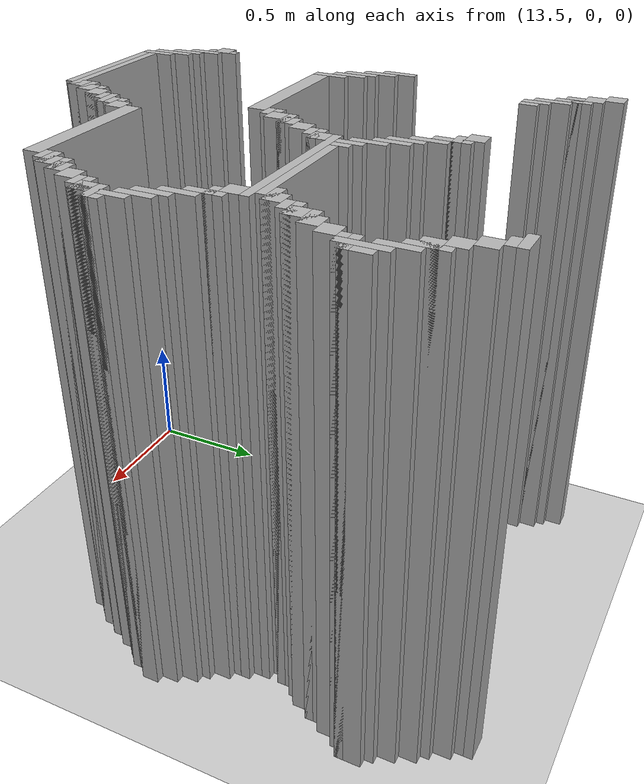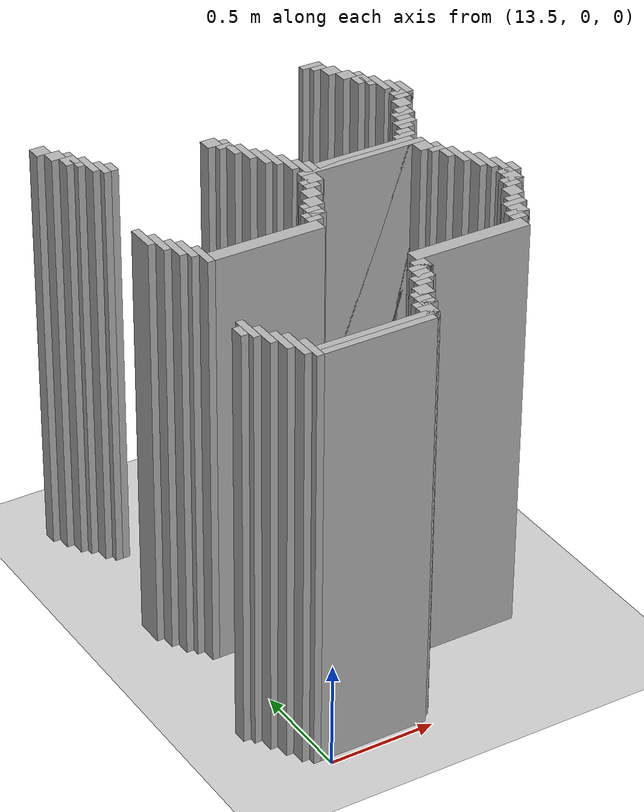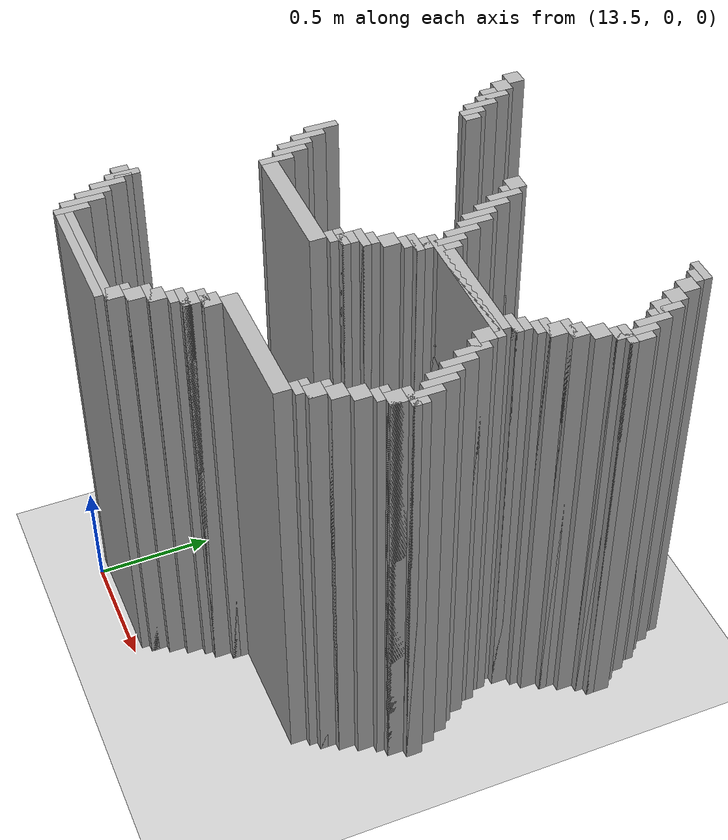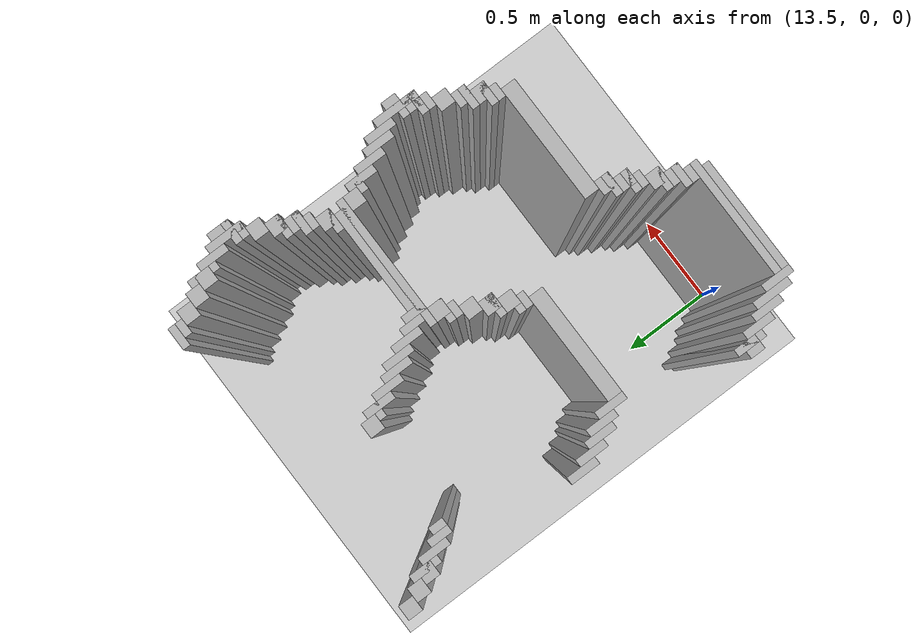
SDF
<sdf version="1.6">
 <world name="slam_world">
  <model name="ground_plane">
   <static>true</static>
   <link name="link">
    <collision name="collision">
     <geometry><plane><normal>0 0 1</normal><size>100 100</size></plane></geometry>
    </collision>
    <visual name="visual">
     <geometry><plane><normal>0 0 1</normal><size>100 100</size></plane></geometry>
     <material>
      <ambient>0.8 0.8 0.8 1</ambient>
      <diffuse>0.8 0.8 0.8 1</diffuse>
      <specular>0.8 0.8 0.8 1</specular>
     </material>
    </visual>
   </link>
  </model>
  <model name="wall_5030">
   <static>true</static>
   <pose>14.704176334106728 2.140371229698376 1.0 0 0 0</pose>
   <link name="link">
    <collision name="collision">
     <geometry><box><size>0.10440835266821345 0.03480278422273782 2.0</size></box></geometry>
    </collision>
    <visual name="visual">
     <geometry><box><size>0.10440835266821345 0.03480278422273782 2.0</size></box></geometry>
     <material><ambient>0.5 0.5 0.5 1</ambient><diffuse>0.7 0.7 0.7 1</diffuse></material>
    </visual>
   </link>
  </model>
  <model name="wall_5043">
   <static>true</static>
   <pose>14.721577726218097 2.105568445475638 1.0 0 0 0</pose>
   <link name="link">
    <collision name="collision">
     <geometry><box><size>0.06960556844547564 0.03480278422273782 2.0</size></box></geometry>
    </collision>
    <visual name="visual">
     <geometry><box><size>0.06960556844547564 0.03480278422273782 2.0</size></box></geometry>
     <material><ambient>0.5 0.5 0.5 1</ambient><diffuse>0.7 0.7 0.7 1</diffuse></material>
    </visual>
   </link>
  </model>
  <model name="wall_5055">
   <static>true</static>
   <pose>13.294663573085847 2.053364269141531 1.0 0 0 0</pose>
   <link name="link">
    <collision name="collision">
     <geometry><box><size>0.06960556844547564 0.06960556844547564 2.0</size></box></geometry>
    </collision>
    <visual name="visual">
     <geometry><box><size>0.06960556844547564 0.06960556844547564 2.0</size></box></geometry>
     <material><ambient>0.5 0.5 0.5 1</ambient><diffuse>0.7 0.7 0.7 1</diffuse></material>
    </visual>
   </link>
  </model>
  <model name="wall_5056">
   <static>true</static>
   <pose>14.756380510440835 2.053364269141531 1.0 0 0 0</pose>
   <link name="link">
    <collision name="collision">
     <geometry><box><size>0.06960556844547564 0.06960556844547564 2.0</size></box></geometry>
    </collision>
    <visual name="visual">
     <geometry><box><size>0.06960556844547564 0.06960556844547564 2.0</size></box></geometry>
     <material><ambient>0.5 0.5 0.5 1</ambient><diffuse>0.7 0.7 0.7 1</diffuse></material>
    </visual>
   </link>
  </model>
  <model name="wall_5068">
   <static>true</static>
   <pose>13.329466357308585 1.9837587006960555 1.0 0 0 0</pose>
   <link name="link">
    <collision name="collision">
     <geometry><box><size>0.06960556844547564 0.06960556844547564 2.0</size></box></geometry>
    </collision>
    <visual name="visual">
     <geometry><box><size>0.06960556844547564 0.06960556844547564 2.0</size></box></geometry>
     <material><ambient>0.5 0.5 0.5 1</ambient><diffuse>0.7 0.7 0.7 1</diffuse></material>
    </visual>
   </link>
  </model>
  <model name="wall_5069">
   <static>true</static>
   <pose>14.791183294663572 1.9837587006960555 1.0 0 0 0</pose>
   <link name="link">
    <collision name="collision">
     <geometry><box><size>0.06960556844547564 0.06960556844547564 2.0</size></box></geometry>
    </collision>
    <visual name="visual">
     <geometry><box><size>0.06960556844547564 0.06960556844547564 2.0</size></box></geometry>
     <material><ambient>0.5 0.5 0.5 1</ambient><diffuse>0.7 0.7 0.7 1</diffuse></material>
    </visual>
   </link>
  </model>
  <model name="wall_5081">
   <static>true</static>
   <pose>13.38167053364269 1.91415313225058 1.0 0 0 0</pose>
   <link name="link">
    <collision name="collision">
     <geometry><box><size>0.03480278422273782 0.13921113689095127 2.0</size></box></geometry>
    </collision>
    <visual name="visual">
     <geometry><box><size>0.03480278422273782 0.13921113689095127 2.0</size></box></geometry>
     <material><ambient>0.5 0.5 0.5 1</ambient><diffuse>0.7 0.7 0.7 1</diffuse></material>
    </visual>
   </link>
  </model>
  <model name="wall_5082">
   <static>true</static>
   <pose>14.84338747099768 1.91415313225058 1.0 0 0 0</pose>
   <link name="link">
    <collision name="collision">
     <geometry><box><size>0.03480278422273782 0.13921113689095127 2.0</size></box></geometry>
    </collision>
    <visual name="visual">
     <geometry><box><size>0.03480278422273782 0.13921113689095127 2.0</size></box></geometry>
     <material><ambient>0.5 0.5 0.5 1</ambient><diffuse>0.7 0.7 0.7 1</diffuse></material>
    </visual>
   </link>
  </model>
  <model name="wall_5091">
   <static>true</static>
   <pose>13.364269141531322 1.91415313225058 1.0 0 0 0</pose>
   <link name="link">
    <collision name="collision">
     <geometry><box><size>0.06960556844547564 0.06960556844547564 2.0</size></box></geometry>
    </collision>
    <visual name="visual">
     <geometry><box><size>0.06960556844547564 0.06960556844547564 2.0</size></box></geometry>
     <material><ambient>0.5 0.5 0.5 1</ambient><diffuse>0.7 0.7 0.7 1</diffuse></material>
    </visual>
   </link>
  </model>
  <model name="wall_5092">
   <static>true</static>
   <pose>14.825986078886311 1.91415313225058 1.0 0 0 0</pose>
   <link name="link">
    <collision name="collision">
     <geometry><box><size>0.06960556844547564 0.06960556844547564 2.0</size></box></geometry>
    </collision>
    <visual name="visual">
     <geometry><box><size>0.06960556844547564 0.06960556844547564 2.0</size></box></geometry>
     <material><ambient>0.5 0.5 0.5 1</ambient><diffuse>0.7 0.7 0.7 1</diffuse></material>
    </visual>
   </link>
  </model>
  <model name="wall_5104">
   <static>true</static>
   <pose>13.416473317865428 1.8445475638051043 1.0 0 0 0</pose>
   <link name="link">
    <collision name="collision">
     <geometry><box><size>0.03480278422273782 0.13921113689095127 2.0</size></box></geometry>
    </collision>
    <visual name="visual">
     <geometry><box><size>0.03480278422273782 0.13921113689095127 2.0</size></box></geometry>
     <material><ambient>0.5 0.5 0.5 1</ambient><diffuse>0.7 0.7 0.7 1</diffuse></material>
    </visual>
   </link>
  </model>
  <model name="wall_5105">
   <static>true</static>
   <pose>14.878190255220417 1.8445475638051043 1.0 0 0 0</pose>
   <link name="link">
    <collision name="collision">
     <geometry><box><size>0.03480278422273782 0.13921113689095127 2.0</size></box></geometry>
    </collision>
    <visual name="visual">
     <geometry><box><size>0.03480278422273782 0.13921113689095127 2.0</size></box></geometry>
     <material><ambient>0.5 0.5 0.5 1</ambient><diffuse>0.7 0.7 0.7 1</diffuse></material>
    </visual>
   </link>
  </model>
  <model name="wall_5123">
   <static>true</static>
   <pose>13.451276102088167 1.7923433874709975 1.0 0 0 0</pose>
   <link name="link">
    <collision name="collision">
     <geometry><box><size>0.03480278422273782 0.10440835266821345 2.0</size></box></geometry>
    </collision>
    <visual name="visual">
     <geometry><box><size>0.03480278422273782 0.10440835266821345 2.0</size></box></geometry>
     <material><ambient>0.5 0.5 0.5 1</ambient><diffuse>0.7 0.7 0.7 1</diffuse></material>
    </visual>
   </link>
  </model>
  <model name="wall_5124">
   <static>true</static>
   <pose>14.912993039443155 1.75754060324826 1.0 0 0 0</pose>
   <link name="link">
    <collision name="collision">
     <geometry><box><size>0.03480278422273782 0.17401392111368907 2.0</size></box></geometry>
    </collision>
    <visual name="visual">
     <geometry><box><size>0.03480278422273782 0.17401392111368907 2.0</size></box></geometry>
     <material><ambient>0.5 0.5 0.5 1</ambient><diffuse>0.7 0.7 0.7 1</diffuse></material>
    </visual>
   </link>
  </model>
  <model name="wall_5136">
   <static>true</static>
   <pose>13.486078886310905 1.7749419953596286 1.0 0 0 0</pose>
   <link name="link">
    <collision name="collision">
     <geometry><box><size>0.03480278422273782 0.06960556844547564 2.0</size></box></geometry>
    </collision>
    <visual name="visual">
     <geometry><box><size>0.03480278422273782 0.06960556844547564 2.0</size></box></geometry>
     <material><ambient>0.5 0.5 0.5 1</ambient><diffuse>0.7 0.7 0.7 1</diffuse></material>
    </visual>
   </link>
  </model>
  <model name="wall_5137">
   <static>true</static>
   <pose>14.947795823665892 1.75754060324826 1.0 0 0 0</pose>
   <link name="link">
    <collision name="collision">
     <geometry><box><size>0.03480278422273782 0.10440835266821345 2.0</size></box></geometry>
    </collision>
    <visual name="visual">
     <geometry><box><size>0.03480278422273782 0.10440835266821345 2.0</size></box></geometry>
     <material><ambient>0.5 0.5 0.5 1</ambient><diffuse>0.7 0.7 0.7 1</diffuse></material>
    </visual>
   </link>
  </model>
  <model name="wall_5148">
   <static>true</static>
   <pose>13.955916473317865 1.740139211136891 1.0 0 0 0</pose>
   <link name="link">
    <collision name="collision">
     <geometry><box><size>0.06960556844547564 0.06960556844547564 2.0</size></box></geometry>
    </collision>
    <visual name="visual">
     <geometry><box><size>0.06960556844547564 0.06960556844547564 2.0</size></box></geometry>
     <material><ambient>0.5 0.5 0.5 1</ambient><diffuse>0.7 0.7 0.7 1</diffuse></material>
    </visual>
   </link>
  </model>
  <model name="wall_5160">
   <static>true</static>
   <pose>14.008120649651971 1.6705336426914152 1.0 0 0 0</pose>
   <link name="link">
    <collision name="collision">
     <geometry><box><size>0.03480278422273782 0.13921113689095127 2.0</size></box></geometry>
    </collision>
    <visual name="visual">
     <geometry><box><size>0.03480278422273782 0.13921113689095127 2.0</size></box></geometry>
     <material><ambient>0.5 0.5 0.5 1</ambient><diffuse>0.7 0.7 0.7 1</diffuse></material>
    </visual>
   </link>
  </model>
  <model name="wall_5161">
   <static>true</static>
   <pose>14.912993039443155 1.722737819025522 1.0 0 0 0</pose>
   <link name="link">
    <collision name="collision">
     <geometry><box><size>0.10440835266821345 0.03480278422273782 2.0</size></box></geometry>
    </collision>
    <visual name="visual">
     <geometry><box><size>0.10440835266821345 0.03480278422273782 2.0</size></box></geometry>
     <material><ambient>0.5 0.5 0.5 1</ambient><diffuse>0.7 0.7 0.7 1</diffuse></material>
    </visual>
   </link>
  </model>
  <model name="wall_5176">
   <static>true</static>
   <pose>13.990719257540603 1.6879350348027842 1.0 0 0 0</pose>
   <link name="link">
    <collision name="collision">
     <geometry><box><size>0.06960556844547564 0.03480278422273782 2.0</size></box></geometry>
    </collision>
    <visual name="visual">
     <geometry><box><size>0.06960556844547564 0.03480278422273782 2.0</size></box></geometry>
     <material><ambient>0.5 0.5 0.5 1</ambient><diffuse>0.7 0.7 0.7 1</diffuse></material>
    </visual>
   </link>
  </model>
  <model name="wall_5177">
   <static>true</static>
   <pose>14.895591647331786 1.6879350348027842 1.0 0 0 0</pose>
   <link name="link">
    <collision name="collision">
     <geometry><box><size>0.06960556844547564 0.03480278422273782 2.0</size></box></geometry>
    </collision>
    <visual name="visual">
     <geometry><box><size>0.06960556844547564 0.03480278422273782 2.0</size></box></geometry>
     <material><ambient>0.5 0.5 0.5 1</ambient><diffuse>0.7 0.7 0.7 1</diffuse></material>
    </visual>
   </link>
  </model>
  <model name="wall_5192">
   <static>true</static>
   <pose>14.042923433874709 1.6009280742459395 1.0 0 0 0</pose>
   <link name="link">
    <collision name="collision">
     <geometry><box><size>0.03480278422273782 0.13921113689095127 2.0</size></box></geometry>
    </collision>
    <visual name="visual">
     <geometry><box><size>0.03480278422273782 0.13921113689095127 2.0</size></box></geometry>
     <material><ambient>0.5 0.5 0.5 1</ambient><diffuse>0.7 0.7 0.7 1</diffuse></material>
    </visual>
   </link>
  </model>
  <model name="wall_5193">
   <static>true</static>
   <pose>14.860788863109049 1.6357308584686774 1.0 0 0 0</pose>
   <link name="link">
    <collision name="collision">
     <geometry><box><size>0.06960556844547564 0.06960556844547564 2.0</size></box></geometry>
    </collision>
    <visual name="visual">
     <geometry><box><size>0.06960556844547564 0.06960556844547564 2.0</size></box></geometry>
     <material><ambient>0.5 0.5 0.5 1</ambient><diffuse>0.7 0.7 0.7 1</diffuse></material>
    </visual>
   </link>
  </model>
  <model name="wall_5208">
   <static>true</static>
   <pose>14.077726218097448 1.531322505800464 1.0 0 0 0</pose>
   <link name="link">
    <collision name="collision">
     <geometry><box><size>0.03480278422273782 0.13921113689095127 2.0</size></box></geometry>
    </collision>
    <visual name="visual">
     <geometry><box><size>0.03480278422273782 0.13921113689095127 2.0</size></box></geometry>
     <material><ambient>0.5 0.5 0.5 1</ambient><diffuse>0.7 0.7 0.7 1</diffuse></material>
    </visual>
   </link>
  </model>
  <model name="wall_5209">
   <static>true</static>
   <pose>14.825986078886311 1.5661252900232019 1.0 0 0 0</pose>
   <link name="link">
    <collision name="collision">
     <geometry><box><size>0.06960556844547564 0.06960556844547564 2.0</size></box></geometry>
    </collision>
    <visual name="visual">
     <geometry><box><size>0.06960556844547564 0.06960556844547564 2.0</size></box></geometry>
     <material><ambient>0.5 0.5 0.5 1</ambient><diffuse>0.7 0.7 0.7 1</diffuse></material>
    </visual>
   </link>
  </model>
  <model name="wall_5224">
   <static>true</static>
   <pose>14.112529002320185 1.4965197215777262 1.0 0 0 0</pose>
   <link name="link">
    <collision name="collision">
     <geometry><box><size>0.03480278422273782 0.13921113689095127 2.0</size></box></geometry>
    </collision>
    <visual name="visual">
     <geometry><box><size>0.03480278422273782 0.13921113689095127 2.0</size></box></geometry>
     <material><ambient>0.5 0.5 0.5 1</ambient><diffuse>0.7 0.7 0.7 1</diffuse></material>
    </visual>
   </link>
  </model>
  <model name="wall_5225">
   <static>true</static>
   <pose>14.80858468677494 1.548723897911833 1.0 0 0 0</pose>
   <link name="link">
    <collision name="collision">
     <geometry><box><size>0.10440835266821345 0.03480278422273782 2.0</size></box></geometry>
    </collision>
    <visual name="visual">
     <geometry><box><size>0.10440835266821345 0.03480278422273782 2.0</size></box></geometry>
     <material><ambient>0.5 0.5 0.5 1</ambient><diffuse>0.7 0.7 0.7 1</diffuse></material>
    </visual>
   </link>
  </model>
  <model name="wall_5238">
   <static>true</static>
   <pose>14.791183294663572 1.4965197215777262 1.0 0 0 0</pose>
   <link name="link">
    <collision name="collision">
     <geometry><box><size>0.06960556844547564 0.06960556844547564 2.0</size></box></geometry>
    </collision>
    <visual name="visual">
     <geometry><box><size>0.06960556844547564 0.06960556844547564 2.0</size></box></geometry>
     <material><ambient>0.5 0.5 0.5 1</ambient><diffuse>0.7 0.7 0.7 1</diffuse></material>
    </visual>
   </link>
  </model>
  <model name="wall_5253">
   <static>true</static>
   <pose>14.147331786542923 1.4269141531322505 1.0 0 0 0</pose>
   <link name="link">
    <collision name="collision">
     <geometry><box><size>0.03480278422273782 0.13921113689095127 2.0</size></box></geometry>
    </collision>
    <visual name="visual">
     <geometry><box><size>0.03480278422273782 0.13921113689095127 2.0</size></box></geometry>
     <material><ambient>0.5 0.5 0.5 1</ambient><diffuse>0.7 0.7 0.7 1</diffuse></material>
    </visual>
   </link>
  </model>
  <model name="wall_5254">
   <static>true</static>
   <pose>14.773781902552203 1.4791183294663572 1.0 0 0 0</pose>
   <link name="link">
    <collision name="collision">
     <geometry><box><size>0.10440835266821345 0.03480278422273782 2.0</size></box></geometry>
    </collision>
    <visual name="visual">
     <geometry><box><size>0.10440835266821345 0.03480278422273782 2.0</size></box></geometry>
     <material><ambient>0.5 0.5 0.5 1</ambient><diffuse>0.7 0.7 0.7 1</diffuse></material>
    </visual>
   </link>
  </model>
  <model name="wall_5264">
   <static>true</static>
   <pose>14.756380510440835 1.4443155452436194 1.0 0 0 0</pose>
   <link name="link">
    <collision name="collision">
     <geometry><box><size>0.06960556844547564 0.03480278422273782 2.0</size></box></geometry>
    </collision>
    <visual name="visual">
     <geometry><box><size>0.06960556844547564 0.03480278422273782 2.0</size></box></geometry>
     <material><ambient>0.5 0.5 0.5 1</ambient><diffuse>0.7 0.7 0.7 1</diffuse></material>
    </visual>
   </link>
  </model>
  <model name="wall_5279">
   <static>true</static>
   <pose>14.18213457076566 1.322505800464037 1.0 0 0 0</pose>
   <link name="link">
    <collision name="collision">
     <geometry><box><size>0.03480278422273782 0.2088167053364269 2.0</size></box></geometry>
    </collision>
    <visual name="visual">
     <geometry><box><size>0.03480278422273782 0.2088167053364269 2.0</size></box></geometry>
     <material><ambient>0.5 0.5 0.5 1</ambient><diffuse>0.7 0.7 0.7 1</diffuse></material>
    </visual>
   </link>
  </model>
  <model name="wall_5280">
   <static>true</static>
   <pose>14.721577726218097 1.3921113689095126 1.0 0 0 0</pose>
   <link name="link">
    <collision name="collision">
     <geometry><box><size>0.06960556844547564 0.06960556844547564 2.0</size></box></geometry>
    </collision>
    <visual name="visual">
     <geometry><box><size>0.06960556844547564 0.06960556844547564 2.0</size></box></geometry>
     <material><ambient>0.5 0.5 0.5 1</ambient><diffuse>0.7 0.7 0.7 1</diffuse></material>
    </visual>
   </link>
  </model>
  <model name="wall_5291">
   <static>true</static>
   <pose>14.2169373549884 1.339907192575406 1.0 0 0 0</pose>
   <link name="link">
    <collision name="collision">
     <geometry><box><size>0.03480278422273782 0.10440835266821345 2.0</size></box></geometry>
    </collision>
    <visual name="visual">
     <geometry><box><size>0.03480278422273782 0.10440835266821345 2.0</size></box></geometry>
     <material><ambient>0.5 0.5 0.5 1</ambient><diffuse>0.7 0.7 0.7 1</diffuse></material>
    </visual>
   </link>
  </model>
  <model name="wall_5292">
   <static>true</static>
   <pose>14.704176334106728 1.3747099767981439 1.0 0 0 0</pose>
   <link name="link">
    <collision name="collision">
     <geometry><box><size>0.10440835266821345 0.03480278422273782 2.0</size></box></geometry>
    </collision>
    <visual name="visual">
     <geometry><box><size>0.10440835266821345 0.03480278422273782 2.0</size></box></geometry>
     <material><ambient>0.5 0.5 0.5 1</ambient><diffuse>0.7 0.7 0.7 1</diffuse></material>
    </visual>
   </link>
  </model>
  <model name="wall_5305">
   <static>true</static>
   <pose>14.477958236658932 1.322505800464037 1.0 0 0 0</pose>
   <link name="link">
    <collision name="collision">
     <geometry><box><size>0.4872389791183295 0.06960556844547564 2.0</size></box></geometry>
    </collision>
    <visual name="visual">
     <geometry><box><size>0.4872389791183295 0.06960556844547564 2.0</size></box></geometry>
     <material><ambient>0.5 0.5 0.5 1</ambient><diffuse>0.7 0.7 0.7 1</diffuse></material>
    </visual>
   </link>
  </model>
  <model name="wall_5316">
   <static>true</static>
   <pose>14.443155452436194 1.3051044083526682 1.0 0 0 0</pose>
   <link name="link">
    <collision name="collision">
     <geometry><box><size>0.6264501160092807 0.03480278422273782 2.0</size></box></geometry>
    </collision>
    <visual name="visual">
     <geometry><box><size>0.6264501160092807 0.03480278422273782 2.0</size></box></geometry>
     <material><ambient>0.5 0.5 0.5 1</ambient><diffuse>0.7 0.7 0.7 1</diffuse></material>
    </visual>
   </link>
  </model>
  <model name="wall_5329">
   <static>true</static>
   <pose>14.164733178654291 1.2529002320185614 1.0 0 0 0</pose>
   <link name="link">
    <collision name="collision">
     <geometry><box><size>0.06960556844547564 0.06960556844547564 2.0</size></box></geometry>
    </collision>
    <visual name="visual">
     <geometry><box><size>0.06960556844547564 0.06960556844547564 2.0</size></box></geometry>
     <material><ambient>0.5 0.5 0.5 1</ambient><diffuse>0.7 0.7 0.7 1</diffuse></material>
    </visual>
   </link>
  </model>
  <model name="wall_5330">
   <static>true</static>
   <pose>14.721577726218097 1.2529002320185614 1.0 0 0 0</pose>
   <link name="link">
    <collision name="collision">
     <geometry><box><size>0.06960556844547564 0.06960556844547564 2.0</size></box></geometry>
    </collision>
    <visual name="visual">
     <geometry><box><size>0.06960556844547564 0.06960556844547564 2.0</size></box></geometry>
     <material><ambient>0.5 0.5 0.5 1</ambient><diffuse>0.7 0.7 0.7 1</diffuse></material>
    </visual>
   </link>
  </model>
  <model name="wall_5342">
   <static>true</static>
   <pose>13.312064965197216 1.1832946635730859 1.0 0 0 0</pose>
   <link name="link">
    <collision name="collision">
     <geometry><box><size>0.03480278422273782 0.13921113689095127 2.0</size></box></geometry>
    </collision>
    <visual name="visual">
     <geometry><box><size>0.03480278422273782 0.13921113689095127 2.0</size></box></geometry>
     <material><ambient>0.5 0.5 0.5 1</ambient><diffuse>0.7 0.7 0.7 1</diffuse></material>
    </visual>
   </link>
  </model>
  <model name="wall_5343">
   <static>true</static>
   <pose>14.147331786542923 1.2354988399071924 1.0 0 0 0</pose>
   <link name="link">
    <collision name="collision">
     <geometry><box><size>0.10440835266821345 0.03480278422273782 2.0</size></box></geometry>
    </collision>
    <visual name="visual">
     <geometry><box><size>0.10440835266821345 0.03480278422273782 2.0</size></box></geometry>
     <material><ambient>0.5 0.5 0.5 1</ambient><diffuse>0.7 0.7 0.7 1</diffuse></material>
    </visual>
   </link>
  </model>
  <model name="wall_5344">
   <static>true</static>
   <pose>14.773781902552203 1.1832946635730859 1.0 0 0 0</pose>
   <link name="link">
    <collision name="collision">
     <geometry><box><size>0.03480278422273782 0.13921113689095127 2.0</size></box></geometry>
    </collision>
    <visual name="visual">
     <geometry><box><size>0.03480278422273782 0.13921113689095127 2.0</size></box></geometry>
     <material><ambient>0.5 0.5 0.5 1</ambient><diffuse>0.7 0.7 0.7 1</diffuse></material>
    </visual>
   </link>
  </model>
  <model name="wall_5352">
   <static>true</static>
   <pose>14.129930394431554 1.2006960556844548 1.0 0 0 0</pose>
   <link name="link">
    <collision name="collision">
     <geometry><box><size>0.06960556844547564 0.03480278422273782 2.0</size></box></geometry>
    </collision>
    <visual name="visual">
     <geometry><box><size>0.06960556844547564 0.03480278422273782 2.0</size></box></geometry>
     <material><ambient>0.5 0.5 0.5 1</ambient><diffuse>0.7 0.7 0.7 1</diffuse></material>
    </visual>
   </link>
  </model>
  <model name="wall_5353">
   <static>true</static>
   <pose>14.756380510440835 1.2006960556844548 1.0 0 0 0</pose>
   <link name="link">
    <collision name="collision">
     <geometry><box><size>0.06960556844547564 0.03480278422273782 2.0</size></box></geometry>
    </collision>
    <visual name="visual">
     <geometry><box><size>0.06960556844547564 0.03480278422273782 2.0</size></box></geometry>
     <material><ambient>0.5 0.5 0.5 1</ambient><diffuse>0.7 0.7 0.7 1</diffuse></material>
    </visual>
   </link>
  </model>
  <model name="wall_5365">
   <static>true</static>
   <pose>13.346867749419953 1.1136890951276102 1.0 0 0 0</pose>
   <link name="link">
    <collision name="collision">
     <geometry><box><size>0.03480278422273782 0.13921113689095127 2.0</size></box></geometry>
    </collision>
    <visual name="visual">
     <geometry><box><size>0.03480278422273782 0.13921113689095127 2.0</size></box></geometry>
     <material><ambient>0.5 0.5 0.5 1</ambient><diffuse>0.7 0.7 0.7 1</diffuse></material>
    </visual>
   </link>
  </model>
  <model name="wall_5366">
   <static>true</static>
   <pose>14.095127610208817 1.148491879350348 1.0 0 0 0</pose>
   <link name="link">
    <collision name="collision">
     <geometry><box><size>0.06960556844547564 0.06960556844547564 2.0</size></box></geometry>
    </collision>
    <visual name="visual">
     <geometry><box><size>0.06960556844547564 0.06960556844547564 2.0</size></box></geometry>
     <material><ambient>0.5 0.5 0.5 1</ambient><diffuse>0.7 0.7 0.7 1</diffuse></material>
    </visual>
   </link>
  </model>
  <model name="wall_5367">
   <static>true</static>
   <pose>14.80858468677494 1.1136890951276102 1.0 0 0 0</pose>
   <link name="link">
    <collision name="collision">
     <geometry><box><size>0.03480278422273782 0.13921113689095127 2.0</size></box></geometry>
    </collision>
    <visual name="visual">
     <geometry><box><size>0.03480278422273782 0.13921113689095127 2.0</size></box></geometry>
     <material><ambient>0.5 0.5 0.5 1</ambient><diffuse>0.7 0.7 0.7 1</diffuse></material>
    </visual>
   </link>
  </model>
  <model name="wall_5379">
   <static>true</static>
   <pose>13.38167053364269 1.0440835266821344 1.0 0 0 0</pose>
   <link name="link">
    <collision name="collision">
     <geometry><box><size>0.03480278422273782 0.13921113689095127 2.0</size></box></geometry>
    </collision>
    <visual name="visual">
     <geometry><box><size>0.03480278422273782 0.13921113689095127 2.0</size></box></geometry>
     <material><ambient>0.5 0.5 0.5 1</ambient><diffuse>0.7 0.7 0.7 1</diffuse></material>
    </visual>
   </link>
  </model>
  <model name="wall_5380">
   <static>true</static>
   <pose>14.06032482598608 1.0788863109048723 1.0 0 0 0</pose>
   <link name="link">
    <collision name="collision">
     <geometry><box><size>0.06960556844547564 0.06960556844547564 2.0</size></box></geometry>
    </collision>
    <visual name="visual">
     <geometry><box><size>0.06960556844547564 0.06960556844547564 2.0</size></box></geometry>
     <material><ambient>0.5 0.5 0.5 1</ambient><diffuse>0.7 0.7 0.7 1</diffuse></material>
    </visual>
   </link>
  </model>
  <model name="wall_5381">
   <static>true</static>
   <pose>14.84338747099768 1.0440835266821344 1.0 0 0 0</pose>
   <link name="link">
    <collision name="collision">
     <geometry><box><size>0.03480278422273782 0.13921113689095127 2.0</size></box></geometry>
    </collision>
    <visual name="visual">
     <geometry><box><size>0.03480278422273782 0.13921113689095127 2.0</size></box></geometry>
     <material><ambient>0.5 0.5 0.5 1</ambient><diffuse>0.7 0.7 0.7 1</diffuse></material>
    </visual>
   </link>
  </model>
  <model name="wall_5393">
   <static>true</static>
   <pose>13.416473317865428 1.0092807424593968 1.0 0 0 0</pose>
   <link name="link">
    <collision name="collision">
     <geometry><box><size>0.03480278422273782 0.13921113689095127 2.0</size></box></geometry>
    </collision>
    <visual name="visual">
     <geometry><box><size>0.03480278422273782 0.13921113689095127 2.0</size></box></geometry>
     <material><ambient>0.5 0.5 0.5 1</ambient><diffuse>0.7 0.7 0.7 1</diffuse></material>
    </visual>
   </link>
  </model>
  <model name="wall_5394">
   <static>true</static>
   <pose>14.042923433874709 1.0614849187935034 1.0 0 0 0</pose>
   <link name="link">
    <collision name="collision">
     <geometry><box><size>0.10440835266821345 0.03480278422273782 2.0</size></box></geometry>
    </collision>
    <visual name="visual">
     <geometry><box><size>0.10440835266821345 0.03480278422273782 2.0</size></box></geometry>
     <material><ambient>0.5 0.5 0.5 1</ambient><diffuse>0.7 0.7 0.7 1</diffuse></material>
    </visual>
   </link>
  </model>
  <model name="wall_5395">
   <static>true</static>
   <pose>14.878190255220417 1.0092807424593968 1.0 0 0 0</pose>
   <link name="link">
    <collision name="collision">
     <geometry><box><size>0.03480278422273782 0.13921113689095127 2.0</size></box></geometry>
    </collision>
    <visual name="visual">
     <geometry><box><size>0.03480278422273782 0.13921113689095127 2.0</size></box></geometry>
     <material><ambient>0.5 0.5 0.5 1</ambient><diffuse>0.7 0.7 0.7 1</diffuse></material>
    </visual>
   </link>
  </model>
  <model name="wall_5401">
   <static>true</static>
   <pose>14.02552204176334 1.0092807424593968 1.0 0 0 0</pose>
   <link name="link">
    <collision name="collision">
     <geometry><box><size>0.06960556844547564 0.06960556844547564 2.0</size></box></geometry>
    </collision>
    <visual name="visual">
     <geometry><box><size>0.06960556844547564 0.06960556844547564 2.0</size></box></geometry>
     <material><ambient>0.5 0.5 0.5 1</ambient><diffuse>0.7 0.7 0.7 1</diffuse></material>
    </visual>
   </link>
  </model>
  <model name="wall_5413">
   <static>true</static>
   <pose>13.451276102088167 0.9396751740139211 1.0 0 0 0</pose>
   <link name="link">
    <collision name="collision">
     <geometry><box><size>0.03480278422273782 0.13921113689095127 2.0</size></box></geometry>
    </collision>
    <visual name="visual">
     <geometry><box><size>0.03480278422273782 0.13921113689095127 2.0</size></box></geometry>
     <material><ambient>0.5 0.5 0.5 1</ambient><diffuse>0.7 0.7 0.7 1</diffuse></material>
    </visual>
   </link>
  </model>
  <model name="wall_5414">
   <static>true</static>
   <pose>14.008120649651971 0.9918793503480278 1.0 0 0 0</pose>
   <link name="link">
    <collision name="collision">
     <geometry><box><size>0.10440835266821345 0.03480278422273782 2.0</size></box></geometry>
    </collision>
    <visual name="visual">
     <geometry><box><size>0.10440835266821345 0.03480278422273782 2.0</size></box></geometry>
     <material><ambient>0.5 0.5 0.5 1</ambient><diffuse>0.7 0.7 0.7 1</diffuse></material>
    </visual>
   </link>
  </model>
  <model name="wall_5415">
   <static>true</static>
   <pose>14.912993039443155 0.9048723897911832 1.0 0 0 0</pose>
   <link name="link">
    <collision name="collision">
     <geometry><box><size>0.03480278422273782 0.2088167053364269 2.0</size></box></geometry>
    </collision>
    <visual name="visual">
     <geometry><box><size>0.03480278422273782 0.2088167053364269 2.0</size></box></geometry>
     <material><ambient>0.5 0.5 0.5 1</ambient><diffuse>0.7 0.7 0.7 1</diffuse></material>
    </visual>
   </link>
  </model>
  <model name="wall_5421">
   <static>true</static>
   <pose>13.990719257540603 0.95707656612529 1.0 0 0 0</pose>
   <link name="link">
    <collision name="collision">
     <geometry><box><size>0.06960556844547564 0.03480278422273782 2.0</size></box></geometry>
    </collision>
    <visual name="visual">
     <geometry><box><size>0.06960556844547564 0.03480278422273782 2.0</size></box></geometry>
     <material><ambient>0.5 0.5 0.5 1</ambient><diffuse>0.7 0.7 0.7 1</diffuse></material>
    </visual>
   </link>
  </model>
  <model name="wall_5435">
   <static>true</static>
   <pose>13.729698375870068 0.9048723897911832 1.0 0 0 0</pose>
   <link name="link">
    <collision name="collision">
     <geometry><box><size>0.5220417633410672 0.06960556844547564 2.0</size></box></geometry>
    </collision>
    <visual name="visual">
     <geometry><box><size>0.5220417633410672 0.06960556844547564 2.0</size></box></geometry>
     <material><ambient>0.5 0.5 0.5 1</ambient><diffuse>0.7 0.7 0.7 1</diffuse></material>
    </visual>
   </link>
  </model>
  <model name="wall_5436">
   <static>true</static>
   <pose>14.947795823665892 0.9048723897911832 1.0 0 0 0</pose>
   <link name="link">
    <collision name="collision">
     <geometry><box><size>0.03480278422273782 0.06960556844547564 2.0</size></box></geometry>
    </collision>
    <visual name="visual">
     <geometry><box><size>0.03480278422273782 0.06960556844547564 2.0</size></box></geometry>
     <material><ambient>0.5 0.5 0.5 1</ambient><diffuse>0.7 0.7 0.7 1</diffuse></material>
    </visual>
   </link>
  </model>
  <model name="wall_5446">
   <static>true</static>
   <pose>14.912993039443155 0.8874709976798143 1.0 0 0 0</pose>
   <link name="link">
    <collision name="collision">
     <geometry><box><size>0.10440835266821345 0.03480278422273782 2.0</size></box></geometry>
    </collision>
    <visual name="visual">
     <geometry><box><size>0.10440835266821345 0.03480278422273782 2.0</size></box></geometry>
     <material><ambient>0.5 0.5 0.5 1</ambient><diffuse>0.7 0.7 0.7 1</diffuse></material>
    </visual>
   </link>
  </model>
  <model name="wall_5456">
   <static>true</static>
   <pose>14.895591647331786 0.8352668213457076 1.0 0 0 0</pose>
   <link name="link">
    <collision name="collision">
     <geometry><box><size>0.06960556844547564 0.06960556844547564 2.0</size></box></geometry>
    </collision>
    <visual name="visual">
     <geometry><box><size>0.06960556844547564 0.06960556844547564 2.0</size></box></geometry>
     <material><ambient>0.5 0.5 0.5 1</ambient><diffuse>0.7 0.7 0.7 1</diffuse></material>
    </visual>
   </link>
  </model>
  <model name="wall_5466">
   <static>true</static>
   <pose>14.878190255220417 0.8178654292343387 1.0 0 0 0</pose>
   <link name="link">
    <collision name="collision">
     <geometry><box><size>0.10440835266821345 0.03480278422273782 2.0</size></box></geometry>
    </collision>
    <visual name="visual">
     <geometry><box><size>0.10440835266821345 0.03480278422273782 2.0</size></box></geometry>
     <material><ambient>0.5 0.5 0.5 1</ambient><diffuse>0.7 0.7 0.7 1</diffuse></material>
    </visual>
   </link>
  </model>
  <model name="wall_5472">
   <static>true</static>
   <pose>14.860788863109049 0.7830626450116009 1.0 0 0 0</pose>
   <link name="link">
    <collision name="collision">
     <geometry><box><size>0.06960556844547564 0.03480278422273782 2.0</size></box></geometry>
    </collision>
    <visual name="visual">
     <geometry><box><size>0.06960556844547564 0.03480278422273782 2.0</size></box></geometry>
     <material><ambient>0.5 0.5 0.5 1</ambient><diffuse>0.7 0.7 0.7 1</diffuse></material>
    </visual>
   </link>
  </model>
  <model name="wall_5482">
   <static>true</static>
   <pose>14.825986078886311 0.7308584686774942 1.0 0 0 0</pose>
   <link name="link">
    <collision name="collision">
     <geometry><box><size>0.06960556844547564 0.06960556844547564 2.0</size></box></geometry>
    </collision>
    <visual name="visual">
     <geometry><box><size>0.06960556844547564 0.06960556844547564 2.0</size></box></geometry>
     <material><ambient>0.5 0.5 0.5 1</ambient><diffuse>0.7 0.7 0.7 1</diffuse></material>
    </visual>
   </link>
  </model>
  <model name="wall_5492">
   <static>true</static>
   <pose>14.791183294663572 0.6612529002320185 1.0 0 0 0</pose>
   <link name="link">
    <collision name="collision">
     <geometry><box><size>0.06960556844547564 0.06960556844547564 2.0</size></box></geometry>
    </collision>
    <visual name="visual">
     <geometry><box><size>0.06960556844547564 0.06960556844547564 2.0</size></box></geometry>
     <material><ambient>0.5 0.5 0.5 1</ambient><diffuse>0.7 0.7 0.7 1</diffuse></material>
    </visual>
   </link>
  </model>
  <model name="wall_5502">
   <static>true</static>
   <pose>14.773781902552203 0.6438515081206496 1.0 0 0 0</pose>
   <link name="link">
    <collision name="collision">
     <geometry><box><size>0.10440835266821345 0.03480278422273782 2.0</size></box></geometry>
    </collision>
    <visual name="visual">
     <geometry><box><size>0.10440835266821345 0.03480278422273782 2.0</size></box></geometry>
     <material><ambient>0.5 0.5 0.5 1</ambient><diffuse>0.7 0.7 0.7 1</diffuse></material>
    </visual>
   </link>
  </model>
  <model name="wall_5508">
   <static>true</static>
   <pose>14.756380510440835 0.5916473317865429 1.0 0 0 0</pose>
   <link name="link">
    <collision name="collision">
     <geometry><box><size>0.06960556844547564 0.06960556844547564 2.0</size></box></geometry>
    </collision>
    <visual name="visual">
     <geometry><box><size>0.06960556844547564 0.06960556844547564 2.0</size></box></geometry>
     <material><ambient>0.5 0.5 0.5 1</ambient><diffuse>0.7 0.7 0.7 1</diffuse></material>
    </visual>
   </link>
  </model>
  <model name="wall_5518">
   <static>true</static>
   <pose>14.738979118329466 0.574245939675174 1.0 0 0 0</pose>
   <link name="link">
    <collision name="collision">
     <geometry><box><size>0.10440835266821345 0.03480278422273782 2.0</size></box></geometry>
    </collision>
    <visual name="visual">
     <geometry><box><size>0.10440835266821345 0.03480278422273782 2.0</size></box></geometry>
     <material><ambient>0.5 0.5 0.5 1</ambient><diffuse>0.7 0.7 0.7 1</diffuse></material>
    </visual>
   </link>
  </model>
  <model name="wall_5524">
   <static>true</static>
   <pose>14.721577726218097 0.5394431554524362 1.0 0 0 0</pose>
   <link name="link">
    <collision name="collision">
     <geometry><box><size>0.06960556844547564 0.03480278422273782 2.0</size></box></geometry>
    </collision>
    <visual name="visual">
     <geometry><box><size>0.06960556844547564 0.03480278422273782 2.0</size></box></geometry>
     <material><ambient>0.5 0.5 0.5 1</ambient><diffuse>0.7 0.7 0.7 1</diffuse></material>
    </visual>
   </link>
  </model>
  <model name="wall_5535">
   <static>true</static>
   <pose>14.443155452436194 0.4872389791183295 1.0 0 0 0</pose>
   <link name="link">
    <collision name="collision">
     <geometry><box><size>0.5568445475638051 0.06960556844547564 2.0</size></box></geometry>
    </collision>
    <visual name="visual">
     <geometry><box><size>0.5568445475638051 0.06960556844547564 2.0</size></box></geometry>
     <material><ambient>0.5 0.5 0.5 1</ambient><diffuse>0.7 0.7 0.7 1</diffuse></material>
    </visual>
   </link>
  </model>
  <model name="wall_5555">
   <static>true</static>
   <pose>14.164733178654291 0.4176334106728538 1.0 0 0 0</pose>
   <link name="link">
    <collision name="collision">
     <geometry><box><size>0.06960556844547564 0.06960556844547564 2.0</size></box></geometry>
    </collision>
    <visual name="visual">
     <geometry><box><size>0.06960556844547564 0.06960556844547564 2.0</size></box></geometry>
     <material><ambient>0.5 0.5 0.5 1</ambient><diffuse>0.7 0.7 0.7 1</diffuse></material>
    </visual>
   </link>
  </model>
  <model name="wall_5574">
   <static>true</static>
   <pose>13.312064965197216 0.34802784222737815 1.0 0 0 0</pose>
   <link name="link">
    <collision name="collision">
     <geometry><box><size>0.03480278422273782 0.13921113689095127 2.0</size></box></geometry>
    </collision>
    <visual name="visual">
     <geometry><box><size>0.03480278422273782 0.13921113689095127 2.0</size></box></geometry>
     <material><ambient>0.5 0.5 0.5 1</ambient><diffuse>0.7 0.7 0.7 1</diffuse></material>
    </visual>
   </link>
  </model>
  <model name="wall_5575">
   <static>true</static>
   <pose>14.147331786542923 0.4002320185614849 1.0 0 0 0</pose>
   <link name="link">
    <collision name="collision">
     <geometry><box><size>0.10440835266821345 0.03480278422273782 2.0</size></box></geometry>
    </collision>
    <visual name="visual">
     <geometry><box><size>0.10440835266821345 0.03480278422273782 2.0</size></box></geometry>
     <material><ambient>0.5 0.5 0.5 1</ambient><diffuse>0.7 0.7 0.7 1</diffuse></material>
    </visual>
   </link>
  </model>
  <model name="wall_5594">
   <static>true</static>
   <pose>13.294663573085847 0.34802784222737815 1.0 0 0 0</pose>
   <link name="link">
    <collision name="collision">
     <geometry><box><size>0.06960556844547564 0.06960556844547564 2.0</size></box></geometry>
    </collision>
    <visual name="visual">
     <geometry><box><size>0.06960556844547564 0.06960556844547564 2.0</size></box></geometry>
     <material><ambient>0.5 0.5 0.5 1</ambient><diffuse>0.7 0.7 0.7 1</diffuse></material>
    </visual>
   </link>
  </model>
  <model name="wall_5595">
   <static>true</static>
   <pose>14.129930394431554 0.34802784222737815 1.0 0 0 0</pose>
   <link name="link">
    <collision name="collision">
     <geometry><box><size>0.06960556844547564 0.06960556844547564 2.0</size></box></geometry>
    </collision>
    <visual name="visual">
     <geometry><box><size>0.06960556844547564 0.06960556844547564 2.0</size></box></geometry>
     <material><ambient>0.5 0.5 0.5 1</ambient><diffuse>0.7 0.7 0.7 1</diffuse></material>
    </visual>
   </link>
  </model>
  <model name="wall_5614">
   <static>true</static>
   <pose>13.346867749419953 0.27842227378190254 1.0 0 0 0</pose>
   <link name="link">
    <collision name="collision">
     <geometry><box><size>0.03480278422273782 0.13921113689095127 2.0</size></box></geometry>
    </collision>
    <visual name="visual">
     <geometry><box><size>0.03480278422273782 0.13921113689095127 2.0</size></box></geometry>
     <material><ambient>0.5 0.5 0.5 1</ambient><diffuse>0.7 0.7 0.7 1</diffuse></material>
    </visual>
   </link>
  </model>
  <model name="wall_5615">
   <static>true</static>
   <pose>14.112529002320185 0.3306264501160093 1.0 0 0 0</pose>
   <link name="link">
    <collision name="collision">
     <geometry><box><size>0.10440835266821345 0.03480278422273782 2.0</size></box></geometry>
    </collision>
    <visual name="visual">
     <geometry><box><size>0.10440835266821345 0.03480278422273782 2.0</size></box></geometry>
     <material><ambient>0.5 0.5 0.5 1</ambient><diffuse>0.7 0.7 0.7 1</diffuse></material>
    </visual>
   </link>
  </model>
  <model name="wall_5625">
   <static>true</static>
   <pose>14.095127610208817 0.29582366589327147 1.0 0 0 0</pose>
   <link name="link">
    <collision name="collision">
     <geometry><box><size>0.06960556844547564 0.03480278422273782 2.0</size></box></geometry>
    </collision>
    <visual name="visual">
     <geometry><box><size>0.06960556844547564 0.03480278422273782 2.0</size></box></geometry>
     <material><ambient>0.5 0.5 0.5 1</ambient><diffuse>0.7 0.7 0.7 1</diffuse></material>
    </visual>
   </link>
  </model>
  <model name="wall_5644">
   <static>true</static>
   <pose>13.38167053364269 0.2088167053364269 1.0 0 0 0</pose>
   <link name="link">
    <collision name="collision">
     <geometry><box><size>0.03480278422273782 0.13921113689095127 2.0</size></box></geometry>
    </collision>
    <visual name="visual">
     <geometry><box><size>0.03480278422273782 0.13921113689095127 2.0</size></box></geometry>
     <material><ambient>0.5 0.5 0.5 1</ambient><diffuse>0.7 0.7 0.7 1</diffuse></material>
    </visual>
   </link>
  </model>
  <model name="wall_5645">
   <static>true</static>
   <pose>14.06032482598608 0.24361948955916474 1.0 0 0 0</pose>
   <link name="link">
    <collision name="collision">
     <geometry><box><size>0.06960556844547564 0.06960556844547564 2.0</size></box></geometry>
    </collision>
    <visual name="visual">
     <geometry><box><size>0.06960556844547564 0.06960556844547564 2.0</size></box></geometry>
     <material><ambient>0.5 0.5 0.5 1</ambient><diffuse>0.7 0.7 0.7 1</diffuse></material>
    </visual>
   </link>
  </model>
  <model name="wall_5664">
   <static>true</static>
   <pose>13.416473317865428 0.15661252900232017 1.0 0 0 0</pose>
   <link name="link">
    <collision name="collision">
     <geometry><box><size>0.03480278422273782 0.17401392111368907 2.0</size></box></geometry>
    </collision>
    <visual name="visual">
     <geometry><box><size>0.03480278422273782 0.17401392111368907 2.0</size></box></geometry>
     <material><ambient>0.5 0.5 0.5 1</ambient><diffuse>0.7 0.7 0.7 1</diffuse></material>
    </visual>
   </link>
  </model>
  <model name="wall_5665">
   <static>true</static>
   <pose>14.042923433874709 0.2262180974477958 1.0 0 0 0</pose>
   <link name="link">
    <collision name="collision">
     <geometry><box><size>0.10440835266821345 0.03480278422273782 2.0</size></box></geometry>
    </collision>
    <visual name="visual">
     <geometry><box><size>0.10440835266821345 0.03480278422273782 2.0</size></box></geometry>
     <material><ambient>0.5 0.5 0.5 1</ambient><diffuse>0.7 0.7 0.7 1</diffuse></material>
    </visual>
   </link>
  </model>
  <model name="wall_5675">
   <static>true</static>
   <pose>14.02552204176334 0.17401392111368907 1.0 0 0 0</pose>
   <link name="link">
    <collision name="collision">
     <geometry><box><size>0.06960556844547564 0.06960556844547564 2.0</size></box></geometry>
    </collision>
    <visual name="visual">
     <geometry><box><size>0.06960556844547564 0.06960556844547564 2.0</size></box></geometry>
     <material><ambient>0.5 0.5 0.5 1</ambient><diffuse>0.7 0.7 0.7 1</diffuse></material>
    </visual>
   </link>
  </model>
  <model name="wall_5694">
   <static>true</static>
   <pose>13.451276102088167 0.10440835266821345 1.0 0 0 0</pose>
   <link name="link">
    <collision name="collision">
     <geometry><box><size>0.03480278422273782 0.13921113689095127 2.0</size></box></geometry>
    </collision>
    <visual name="visual">
     <geometry><box><size>0.03480278422273782 0.13921113689095127 2.0</size></box></geometry>
     <material><ambient>0.5 0.5 0.5 1</ambient><diffuse>0.7 0.7 0.7 1</diffuse></material>
    </visual>
   </link>
  </model>
  <model name="wall_5695">
   <static>true</static>
   <pose>14.008120649651971 0.15661252900232017 1.0 0 0 0</pose>
   <link name="link">
    <collision name="collision">
     <geometry><box><size>0.10440835266821345 0.03480278422273782 2.0</size></box></geometry>
    </collision>
    <visual name="visual">
     <geometry><box><size>0.10440835266821345 0.03480278422273782 2.0</size></box></geometry>
     <material><ambient>0.5 0.5 0.5 1</ambient><diffuse>0.7 0.7 0.7 1</diffuse></material>
    </visual>
   </link>
  </model>
  <model name="wall_5705">
   <static>true</static>
   <pose>13.990719257540603 0.10440835266821345 1.0 0 0 0</pose>
   <link name="link">
    <collision name="collision">
     <geometry><box><size>0.06960556844547564 0.06960556844547564 2.0</size></box></geometry>
    </collision>
    <visual name="visual">
     <geometry><box><size>0.06960556844547564 0.06960556844547564 2.0</size></box></geometry>
     <material><ambient>0.5 0.5 0.5 1</ambient><diffuse>0.7 0.7 0.7 1</diffuse></material>
    </visual>
   </link>
  </model>
  <model name="wall_5716">
   <static>true</static>
   <pose>13.747099767981437 0.08700696055684454 1.0 0 0 0</pose>
   <link name="link">
    <collision name="collision">
     <geometry><box><size>0.5568445475638051 0.03480278422273782 2.0</size></box></geometry>
    </collision>
    <visual name="visual">
     <geometry><box><size>0.5568445475638051 0.03480278422273782 2.0</size></box></geometry>
     <material><ambient>0.5 0.5 0.5 1</ambient><diffuse>0.7 0.7 0.7 1</diffuse></material>
    </visual>
   </link>
  </model>
  <model name="wall_5726">
   <static>true</static>
   <pose>13.729698375870068 0.052204176334106726 1.0 0 0 0</pose>
   <link name="link">
    <collision name="collision">
     <geometry><box><size>0.5220417633410672 0.03480278422273782 2.0</size></box></geometry>
    </collision>
    <visual name="visual">
     <geometry><box><size>0.5220417633410672 0.03480278422273782 2.0</size></box></geometry>
     <material><ambient>0.5 0.5 0.5 1</ambient><diffuse>0.7 0.7 0.7 1</diffuse></material>
    </visual>
   </link>
  </model>
 </world>
</sdf>
